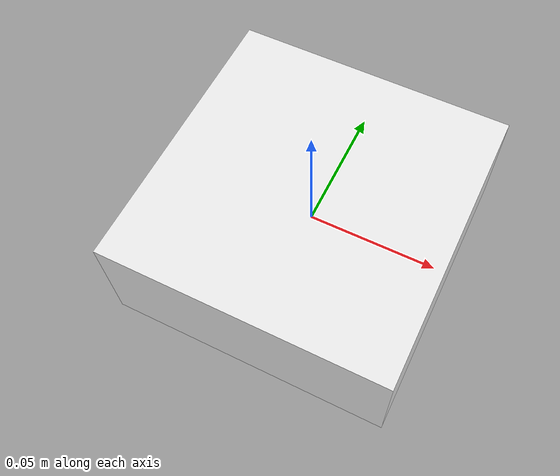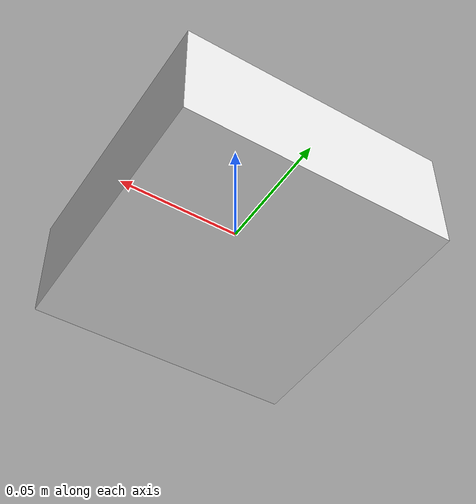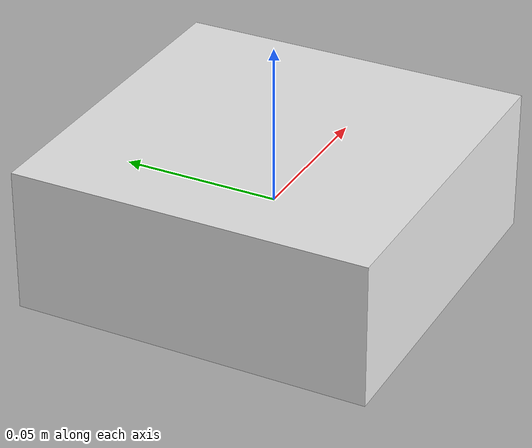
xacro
<?xml version="1.0"?>
<robot xmlns:xacro="https://www.ros.org/wiki/xacro" name="thymio">

    <xacro:include filename="$(find ros_basics_models)/urdf/utils/inertia.xacro" />
    <xacro:include filename="$(find ros_basics_models)/urdf/utils/materials.xacro" />
    <xacro:include filename="$(find ros_basics_models)/urdf/utils/custom_sensors.xacro" />
    <xacro:include filename="$(find ros_basics_exercise)/urdf/thymio_simple.gazebo" />

    <xacro:property name="wheel_radius" value="0.022"/>
    <xacro:property name="wheel_len" value="0.015"/>
    <xacro:arg name="mass" default="0.270"/>
    <xacro:property name="mass_p" value="$(arg mass)"/>
    <xacro:property name="body_mass" value="${mass_p * 0.80}"/>
    <xacro:property name="wheel_mass" value="${mass_p * 0.10}"/>

    <link name="base_link">
        <visual>
            <origin xyz="0 0 0"/>
            <geometry>
                <box size="0.11 0.112 0.045"/>
            </geometry>
            <material name="white"/>
        </visual>
        <collision>
            <origin xyz="0 0 0"/>
            <geometry>
                <box size="0.11 0.112 0.045"/>
            </geometry>
            <material name="white"/>
        </collision>
        <inertial>
            <mass value="${body_mass}"/>
            <xacro:box_inertia mass="${body_mass}" x="0.11" y="0.112" z="0.045" />
        </inertial>

        <!-- Implement the caster wheel -->
    </link>

    <!-- Implement the left wheel -->
    <!-- Implement the joint for the left wheel -->

    <!-- Implement the right wheel -->
    <!-- Implement the joint for the right wheel -->

    <!-- Add your sensors using the macro -->
</robot>
